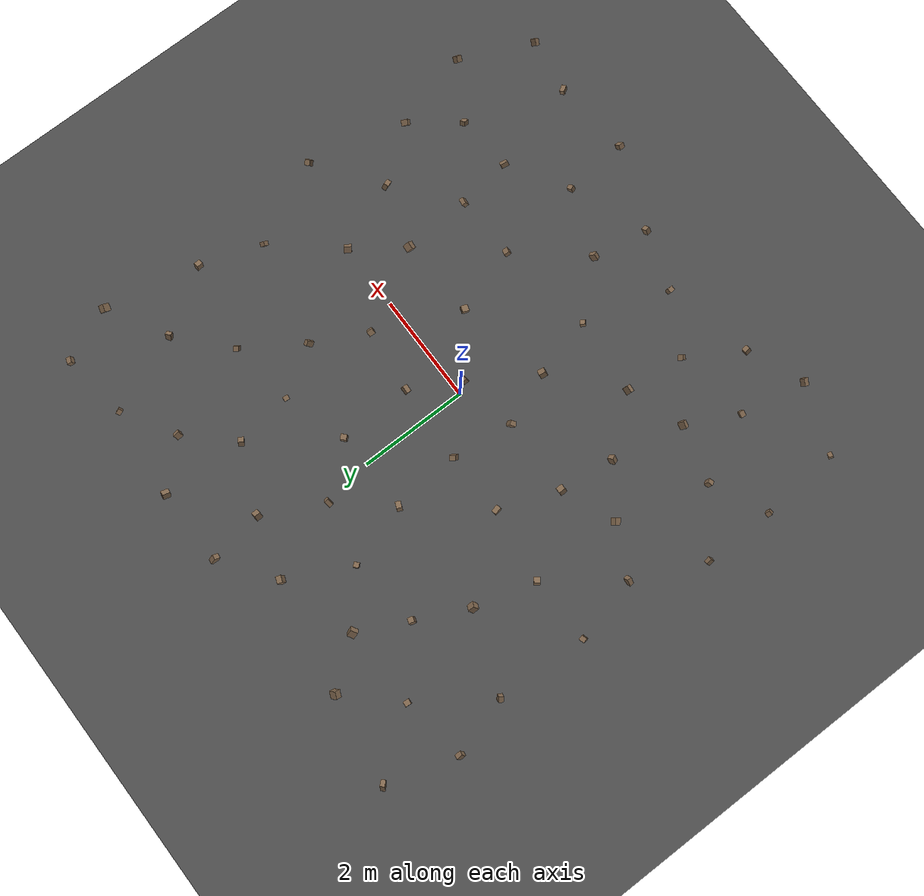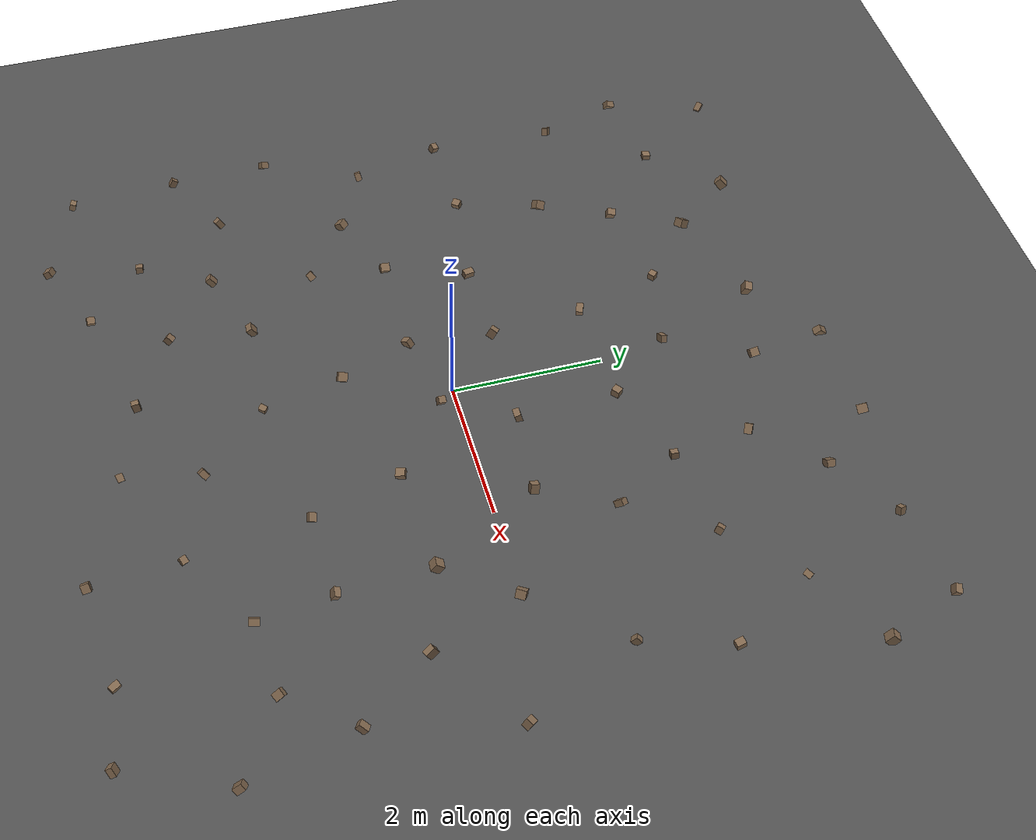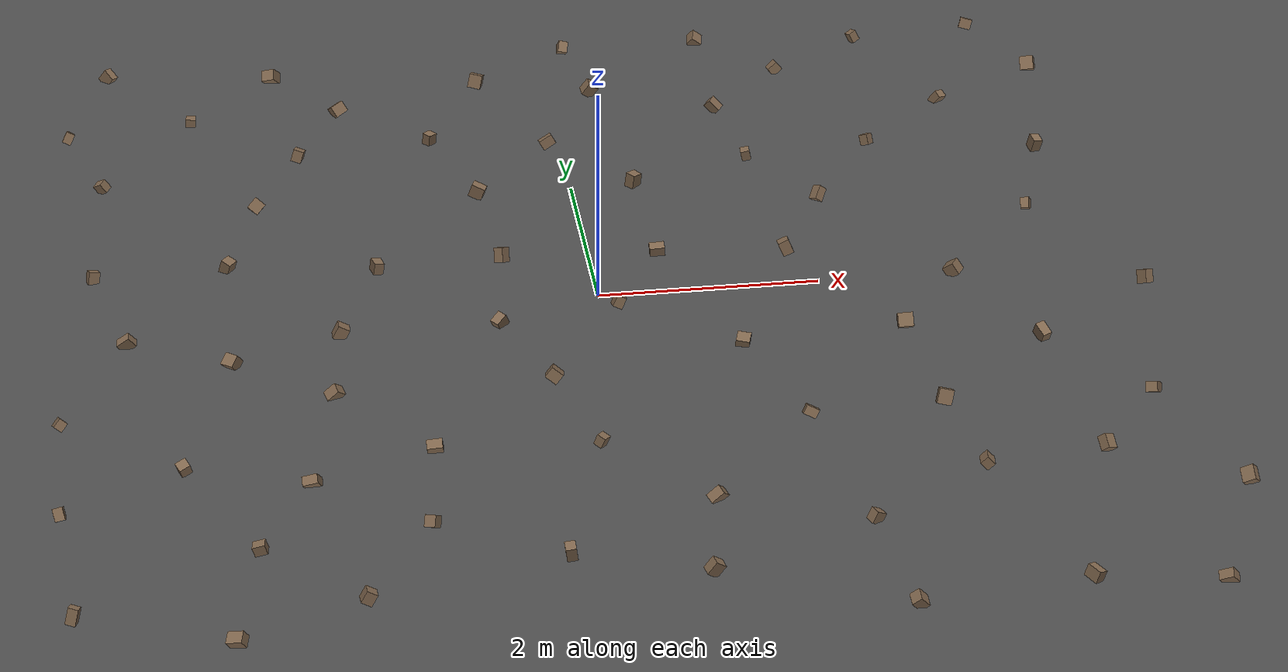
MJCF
<mujoco model="rocky_terrain_scene">
    <compiler angle="radian" inertiafromgeom="true" />
    <option timestep="0.002" gravity="0 0 -9.81" />

    <worldbody>
        <light name="sunlight" pos="5 5 5" dir="-1 -1 -1" diffuse="1 1 1" specular="0.5 0.5 0.5" ambient="0.5 0.5 0.5" />

        <geom name="ground_plane" type="plane" size="50 50 0.1" rgba="0.3 0.3 0.3 1" />

        <body name="rocky_terrain_body">

        <geom name="rock1" type="box" size="0.04775574180794504 0.04015657221901254 0.047092644611906626" pos="-0.2930469673174212 -2.428566678156349 0.052417637780200324" quat="0.5659683844635788 0.06570503498972316 0.09996505787055095 0.268361522676147" rgba="0.5 0.4 0.3 1" friction="0.8457856232382938 0.8948008086875964 0.8172240310866717" /><geom name="rock2" type="box" size="0.06534509023551412 0.059301933481830466 0.057551842438353734" pos="3.243876716720461 -0.0004371800641500556 0.03219657004858152" quat="0.1673346443860843 0.47890702229991405 0.2629057825581981 0.09085255075580363" rgba="0.5 0.4 0.3 1" friction="0.7551214780513752 0.9637959606268572 0.9448879398736101" /><geom name="rock3" type="box" size="0.04181686382163226 0.06998647503593464 0.040399424229857636" pos="-4.627506173423544 -4.332966662146269 0.05805617912228392" quat="0.020059595282871545 0.1188947959183534 0.48364873030394023 0.37739687849483483" rgba="0.5 0.4 0.3 1" friction="0.897326725676747 0.9573219632471748 0.839814851501694" /><geom name="rock4" type="box" size="0.05674370522982118 0.06638238403274262 0.0663383880381467" pos="-2.101480916129772 3.8538171695476695 0.04686006896170025" quat="0.026167602640762885 0.3012677158464365 0.18303883375500632 0.4895258477577943" rgba="0.5 0.4 0.3 1" friction="0.7958982295468022 0.8585444489461216 0.9249401438571795" /><geom name="rock5" type="box" size="0.04506180365713168 0.05762716610907684 0.04980761899961108" pos="-4.496038383373736 0.8801138306238485 0.027765694968674447" quat="0.2220948515764141 0.21148276588738335 0.3395071913659299 0.22691519117027265" rgba="0.5 0.4 0.3 1" friction="0.8087512243989486 0.9977047769633491 0.9337227831981516" /><geom name="rock6" type="box" size="0.058741297507451454 0.0645536153248677 0.056298829861278044" pos="0.4241047461686245 3.9725141359573364 0.05332265857057132" quat="0.14443339199812402 0.33153662471791967 0.3329528723657455 0.1910771109182109" rgba="0.5 0.4 0.3 1" friction="0.8065073493216992 0.891234441856664 0.8475043088747353" /><geom name="rock7" type="box" size="0.057772456878237025 0.04863290424403187 0.056687560426250325" pos="2.354986106396976 4.247129518006595 0.02006967838356359" quat="0.3422070883591358 0.12074881500243778 0.19828430528898972 0.3387597913494366" rgba="0.5 0.4 0.3 1" friction="0.8316987279672532 0.9496867314164049 0.9456961275755478" /><geom name="rock8" type="box" size="0.0437654796415769 0.060980527624881896 0.04865037345415289" pos="-3.745499936099602 -2.401614931572845 0.05938703165467854" quat="0.17041218508494657 0.22339709628322452 0.20736548267102353 0.39882523596080544" rgba="0.5 0.4 0.3 1" friction="0.7738870079240033 0.9546405065506033 0.8741457423750615" /><geom name="rock9" type="box" size="0.055405237064109436 0.04661262742310616 0.05717237225816832" pos="1.8453806165541593 -4.956073358934452 0.030287845065134752" quat="0.09302572053037118 0.38037015654649076 0.3495640351508879 0.1770400877722502" rgba="0.5 0.4 0.3 1" friction="0.8154413935353676 0.9259175353182213 0.9170743821186845" /><geom name="rock10" type="box" size="0.054421592570820895 0.04032849404231402 0.04727383977799451" pos="-3.551910770339619 3.8144248562933623 0.03552698448081079" quat="0.25721294770535835 0.2611830996972175 0.257392015514018 0.2242119370834062" rgba="0.5 0.4 0.3 1" friction="0.8482316362408522 0.9541100189177655 0.8264196540503476" /><geom name="rock11" type="box" size="0.06311316655761015 0.05993250823174425 0.05294088865899024" pos="-0.5592191785935308 -1.3368097280433675 0.041780246169681165" quat="0.4202190582403568 0.08787542472208998 0.16774717784124454 0.32415833919630865" rgba="0.5 0.4 0.3 1" friction="0.7731419812425688 0.9615717174800165 0.8565893015765224" /><geom name="rock12" type="box" size="0.05658450717121025 0.0546390203675339 0.06382782582097608" pos="-3.3015290810212514 -0.7526490299529431 0.030544929020587586" quat="0.2931532402026524 0.3888610202711616 0.035302355088053496 0.2826833844381325" rgba="0.5 0.4 0.3 1" friction="0.7741174631591738 0.9661570885365284 0.9040537680706618" /><geom name="rock13" type="box" size="0.059261589017744865 0.06982188600969934 0.06745617565116503" pos="4.931614072591726 3.9809965554940003 0.025007892391207168" quat="0.4117268081324663 0.1850106147770534 0.28647159133770506 0.1167909857527752" rgba="0.5 0.4 0.3 1" friction="0.8176315623404002 0.9234832590329323 0.8408589503680846" /><geom name="rock14" type="box" size="0.05097829554016909 0.049303431459164354 0.04008252439349549" pos="4.198163202167963 1.1091221837388465 0.025479697673452848" quat="0.23126731934109873 0.3416534280080065 0.06572814235080546 0.36135111030008926" rgba="0.5 0.4 0.3 1" friction="0.8370789617330502 0.8507834409955876 0.8580758440779575" /><geom name="rock15" type="box" size="0.06571618178648611 0.051932734657238924 0.04211374529654703" pos="3.276732793936258 -4.807406991155496 0.04402494289617967" quat="0.13292218108705195 0.2228587153597667 0.3580609864043672 0.28615811714881423" rgba="0.5 0.4 0.3 1" friction="0.7768934102740136 0.9002767595114906 0.9489384146912418" /><geom name="rock16" type="box" size="0.04291671797378995 0.05087347557539725 0.048489533046447174" pos="2.969554110880205 2.578692120848518 0.029181771362118625" quat="0.19059563872917784 0.07460123130488179 0.4349774075246835 0.299825722441257" rgba="0.5 0.4 0.3 1" friction="0.8286050652537629 0.8641001547516063 0.8743189602777444" /><geom name="rock17" type="box" size="0.0687619917071585 0.05272535200955553 0.06369085840274176" pos="-0.686016774583126 4.289671000914698 0.054385924173340094" quat="0.13702040368013066 0.47544390351165733 0.0019117920246105099 0.3856239007836015" rgba="0.5 0.4 0.3 1" friction="0.7882120328390355 0.8764109014520975 0.9039786770195739" /><geom name="rock18" type="box" size="0.06420687630629798 0.05082044285678494 0.043573417373748785" pos="-0.7451845307941793 -3.9921837722782594 0.05811036267624195" quat="0.49443121587849476 0.03856172608266817 0.4312732500903243 0.03573380794851282" rgba="0.5 0.4 0.3 1" friction="0.8102081538680189 0.9352541352302117 0.8909026313481826" /><geom name="rock19" type="box" size="0.04451636622503647 0.04933286075809455 0.05256182388324045" pos="1.7497944063996753 -3.782820457337326 0.024231253686489252" quat="0.31203759672487796 0.08740456941146729 0.12038400127495223 0.48017383258870244" rgba="0.5 0.4 0.3 1" friction="0.843112363840925 0.8592092704177253 0.9120833834935528" /><geom name="rock20" type="box" size="0.046582009613088865 0.04406358533839172 0.053010702488223524" pos="-3.17053954970521 -3.601096623896484 0.04308097743435961" quat="0.30248572111116595 0.23038943566295358 0.19625136630479606 0.2708734769210844" rgba="0.5 0.4 0.3 1" friction="0.8621442031520099 0.9435641151691401 0.8771806369746296" /><geom name="rock21" type="box" size="0.06558913856052039 0.062163230842180124 0.06786071501758953" pos="2.613322219808886 -0.8728786828693398 0.052110124536524" quat="0.3575371187226237 0.1716680652911224 0.31531039150261064 0.15548442448364322" rgba="0.5 0.4 0.3 1" friction="0.8668526932111587 0.8886930082043384 0.8361664645886931" /><geom name="rock22" type="box" size="0.0532903436587133 0.0541262943885385 0.047748128709485034" pos="-2.367658818411474 -4.369803486639475 0.05074044451244336" quat="0.19474834656053946 0.2987656387036438 0.3375269790981461 0.16895903563767062" rgba="0.5 0.4 0.3 1" friction="0.754266120017912 0.8826202297264568 0.906634953258437" /><geom name="rock23" type="box" size="0.06857844205385571 0.04199017733959208 0.04560029546237063" pos="2.8185907786158815 -3.121160607463133 0.03160737718947682" quat="0.1810649725610035 0.37403035854256045 0.3300353573112914 0.11486931158514462" rgba="0.5 0.4 0.3 1" friction="0.7997752419209414 0.9755439092901174 0.8841126696941685" /><geom name="rock24" type="box" size="0.055628131119459565 0.06875449340127712 0.05048681170905948" pos="0.5981046344936614 2.0314832630917117 0.045664935338180584" quat="0.36057329883790384 0.37179668595960025 0.1571359829802232 0.11049403222227279" rgba="0.5 0.4 0.3 1" friction="0.8956329917792994 0.9962822925630206 0.879384024119413" /><geom name="rock25" type="box" size="0.04533741514877437 0.06823281906327025 0.05527462597570554" pos="-0.7959927609252571 0.7553828354695984 0.05262904496613986" quat="0.16223644848072297 0.09906362209010727 0.45597450638606146 0.28272542304310816" rgba="0.5 0.4 0.3 1" friction="0.7582498584448705 0.8748113937148773 0.8342277148083984" /><geom name="rock26" type="box" size="0.06688623776719718 0.04993091562346835 0.04223043269583704" pos="2.2891265100691625 1.5348662228766239 0.04181933348837355" quat="0.03675153004564696 0.508307813769032 0.1956573397751186 0.2592833164102024" rgba="0.5 0.4 0.3 1" friction="0.831432943673006 0.9831228648800017 0.86216509850803" /><geom name="rock27" type="box" size="0.053180096675688925 0.04316456052817291 0.050830968792317494" pos="-4.413781883647704 2.5565115699786913 0.043631621480995336" quat="0.18621106790806016 0.1948684643340944 0.5832378804162789 0.035682587341566575" rgba="0.5 0.4 0.3 1" friction="0.7590244531592626 0.9602373986922133 0.8663720828945171" /><geom name="rock28" type="box" size="0.05124017373319664 0.06128067183813903 0.05160328850814488" pos="4.925757813523843 -0.3907392173979227 0.04622868646552125" quat="0.21804874235366936 0.11971855161443445 0.4165260857179455 0.24570662031395063" rgba="0.5 0.4 0.3 1" friction="0.8245351124060117 0.884397209493313 0.9350314330920492" /><geom name="rock29" type="box" size="0.05187173487144095 0.041302060007412135 0.058282299173554264" pos="1.5211426649138922 -2.1714572338876637 0.020445190212123213" quat="0.2619804077822543 0.28077349515451977 0.3380173312017356 0.11922876586149031" rgba="0.5 0.4 0.3 1" friction="0.8500999144499426 0.8960754587074896 0.8476631534479746" /><geom name="rock30" type="box" size="0.04952707321720987 0.05361453470015647 0.04516537652600309" pos="0.15364697799659588 -0.19299048948961506 0.047026897646008835" quat="0.2133396132056245 0.2790009508011053 0.3431967436128655 0.1644626923804046" rgba="0.5 0.4 0.3 1" friction="0.8744166170954341 0.9628356603288543 0.9429936810159636" /><geom name="rock31" type="box" size="0.06268032413365283 0.06988093565717099 0.04176410643406179" pos="-4.3585919138302485 4.910509739205608 0.021617063986735657" quat="0.013479863577711275 0.2675598865412217 0.33596099394246753 0.3829992559385994" rgba="0.5 0.4 0.3 1" friction="0.849434385597032 0.9689646534476674 0.9416711728845497" /><geom name="rock32" type="box" size="0.04417802033668332 0.06359614794638478 0.06901678221988039" pos="0.6301743996884435 0.6943394801147473 0.026615156307405047" quat="0.23113643870240608 0.2752520046221971 0.20394365504424675 0.28966790163115" rgba="0.5 0.4 0.3 1" friction="0.8151697953954519 0.8862506314527071 0.9166233299244124" /><geom name="rock33" type="box" size="0.06950272867454364 0.054565458200701855 0.04540525237152796" pos="-1.939146287016639 0.7226578090342741 0.036632372003755485" quat="0.21013384390067183 0.2392844073583789 0.30330431850356504 0.24727743023738422" rgba="0.5 0.4 0.3 1" friction="0.8025456758589983 0.9521663639577559 0.8621275160509907" /><geom name="rock34" type="box" size="0.04894374844198412 0.06451859169362481 0.05517644817937388" pos="-3.283653097451651 0.9118660461539232 0.03378184576268764" quat="0.06541716279778435 0.18802021011665235 0.3525571045167042 0.3940055225688591" rgba="0.5 0.4 0.3 1" friction="0.7873952073490463 0.899038510760959 0.9060579897046133" /><geom name="rock35" type="box" size="0.053924934288794184 0.0583445368635553 0.05001737691329133" pos="-2.5395020759690325 2.9551979763555405 0.042130065138947695" quat="0.27265510726276515 0.29825692789496505 0.2803503571818951 0.14873760766037475" rgba="0.5 0.4 0.3 1" friction="0.7607307404291469 0.9239970433048622 0.8834566260130774" /><geom name="rock36" type="box" size="0.04108954655316949 0.05683021045225653 0.06742214122817705" pos="-4.2021620822827055 -0.309279380823714 0.026939832021746116" quat="0.3154061083445748 0.20226258674239386 0.13101667691210328 0.35131462800092805" rgba="0.5 0.4 0.3 1" friction="0.7971662608489616 0.9620905444745347 0.8565613730863127" /><geom name="rock37" type="box" size="0.05443326061845992 0.04499109633524493 0.04215896041322514" pos="-4.751086929728791 -2.8932003904465153 0.02530920597063055" quat="0.12576398484197673 0.33780026077027275 0.10913412990887135 0.4273016244788791" rgba="0.5 0.4 0.3 1" friction="0.875949870894322 0.8892077473225548 0.8226346133233843" /><geom name="rock38" type="box" size="0.04621179905821679 0.06769760546058766 0.0585178899520543" pos="4.566717413577555 2.2403763590487857 0.05471260662650637" quat="0.41809150078806634 0.5033042783273334 0.0753420026877543 0.0032622181968459158" rgba="0.5 0.4 0.3 1" friction="0.7657947808436912 0.9563766744638158 0.923967554931228" /><geom name="rock39" type="box" size="0.04879494152617946 0.04131491733691067 0.06816833121062676" pos="-0.12585849960852435 2.891825615474679 0.05618629925835128" quat="0.025596230163575477 0.3323328347833088 0.06779479834033439 0.5742761367127813" rgba="0.5 0.4 0.3 1" friction="0.8343988152379109 0.9366479686928445 0.9170666601751158" /><geom name="rock40" type="box" size="0.04304814791716572 0.06425709232570218 0.06653720036341537" pos="-1.6755441260583304 -2.326133670956261 0.03827278813825117" quat="0.19335495082470863 0.31414862340350763 0.1557542169843386 0.33674220878744515" rgba="0.5 0.4 0.3 1" friction="0.7713676181368506 0.9091565886411351 0.8431841772520949" /><geom name="rock41" type="box" size="0.05376751899060834 0.04740323352494319 0.06472025262094426" pos="-2.4491197750973814 -1.3629712252049444 0.022428387062050442" quat="0.5419193163336665 0.08475442970749474 0.23027676937349484 0.14304948458534383" rgba="0.5 0.4 0.3 1" friction="0.8008393343644806 0.951592088913198 0.8449162950224385" /><geom name="rock42" type="box" size="0.06670282830684032 0.0610679807632879 0.05872380064380429" pos="-2.9799468641629865 2.020692815617018 0.023731813188910447" quat="0.24848073352660785 0.3032740248194172 0.39206108121006117 0.05618416044391381" rgba="0.5 0.4 0.3 1" friction="0.8503757764776522 0.9773701224023015 0.8955048389629973" /><geom name="rock43" type="box" size="0.045552020185936654 0.06182277547983876 0.051524060156553815" pos="0.3444814465968342 -4.346474568658341 0.05316264198739941" quat="0.13343600989378707 0.3074951618820235 0.357548820539646 0.20152000768454345" rgba="0.5 0.4 0.3 1" friction="0.7992462102044922 0.9540283238170273 0.9066959020700007" /><geom name="rock44" type="box" size="0.051238219233632386 0.04396663867707742 0.06679461492389671" pos="4.490638270402078 -2.20085117625467 0.028942322977094724" quat="0.13588943085828264 0.08790416095463886 0.5184239963117544 0.2577824118753241" rgba="0.5 0.4 0.3 1" friction="0.7568321299106643 0.9844764514150087 0.8848485117972186" /><geom name="rock45" type="box" size="0.044189304085825 0.06149332873567183 0.058409650716430034" pos="-0.9300354661771335 -0.3734994311577111 0.02578619706379675" quat="0.17735273136612703 0.13505963826440068 0.2458519493234528 0.4417356810460195" rgba="0.5 0.4 0.3 1" friction="0.8207948690623585 0.9044497370107559 0.9239236813284892" /><geom name="rock46" type="box" size="0.04140463015711469 0.062028558722283314 0.060771346223891326" pos="4.305600778185948 -4.970404300626284 0.028069233095091455" quat="0.02546001347018115 0.4391567079111067 0.3258121694169129 0.20957110920179933" rgba="0.5 0.4 0.3 1" friction="0.7963829083389993 0.9762082981231007 0.9068256949851026" /><geom name="rock47" type="box" size="0.04120594510236443 0.0674783450173581 0.052387328035258904" pos="3.8547036285750576 3.3724503387558418 0.022240619589607186" quat="0.06629505275911265 0.2848865828360333 0.30986881250734183 0.33894955189751225" rgba="0.5 0.4 0.3 1" friction="0.840642198516769 0.8798128051921086 0.8294875038830198" /><geom name="rock48" type="box" size="0.057459953524926055 0.06547792500809682 0.04751724601842026" pos="4.880954381514792 -3.6554618203956757 0.05800655377298669" quat="0.19188314006659435 0.05438820441621513 0.5701956113281155 0.18353304418907496" rgba="0.5 0.4 0.3 1" friction="0.7986997172250249 0.9209953858391625 0.8365653804410221" /><geom name="rock49" type="box" size="0.06717296572524156 0.0677107449115596 0.04290255560243984" pos="3.7603214448906837 -1.231315324090092 0.05449186963921393" quat="0.14665262447982913 0.2583511673522655 0.22582739338340171 0.3691688147845037" rgba="0.5 0.4 0.3 1" friction="0.7950511212475074 0.9928287271099194 0.9246519855313188" /><geom name="rock50" type="box" size="0.05102588953542085 0.04751226421391333 0.06753735989747167" pos="1.6039363296332931 3.4610241011043215 0.040763522705978265" quat="0.18326369749818663 0.4437759601407526 0.24250914759680303 0.13045119476425773" rgba="0.5 0.4 0.3 1" friction="0.8378770960362265 0.8836333995928479 0.8630619724319752" /><geom name="rock51" type="box" size="0.05593763400581022 0.0680004635405192 0.06805930302816274" pos="-2.728153892899401 4.669633208433725 0.04268722884847535" quat="0.25135936124511243 0.32489477689387924 0.05390799726207739 0.3698378645989309" rgba="0.5 0.4 0.3 1" friction="0.8188243750311537 0.9684601646846742 0.8168275012529653" /><geom name="rock52" type="box" size="0.06254208390704846 0.04099285655025049 0.06026656836043054" pos="1.1496758708491974 -0.9643492883340254 0.02279267616863485" quat="0.25580109108382826 0.32329422643014477 0.1891035669055074 0.23180111558051955" rgba="0.5 0.4 0.3 1" friction="0.8633060613761864 0.8952277562390945 0.8572569938414745" /><geom name="rock53" type="box" size="0.055907693868085674 0.06747384320411925 0.05157346232988272" pos="1.8019126936047307 0.5703490887036997 0.04955504839705996" quat="0.32552720539814184 0.17629251762003456 0.22036879682844016 0.27781148015338347" rgba="0.5 0.4 0.3 1" friction="0.7624292706876606 0.9226821621206055 0.9146789868643723" /><geom name="rock54" type="box" size="0.05537687621632388 0.060073994109476406 0.04199246552514249" pos="-4.741659514226203 3.6304058995805093 0.02999682128340049" quat="0.09921939397526557 0.5198807801289349 0.07349838955023441 0.3074014363455651" rgba="0.5 0.4 0.3 1" friction="0.8439928718072987 0.9063429841292061 0.8806798086689088" /><geom name="rock55" type="box" size="0.06240060253116012 0.05592770107058409 0.06225390393599325" pos="-2.333700838184739 -0.35704850609641436 0.022965946466739696" quat="0.4012274092285118 0.08102605993439463 0.11974238596440549 0.398004144872688" rgba="0.5 0.4 0.3 1" friction="0.8346386960984622 0.8857597065399985 0.8184890790982121" /><geom name="rock56" type="box" size="0.043242977884371744 0.06629653682017941 0.059724279587994464" pos="0.5333651851332224 -3.3324608643554035 0.032428307774586364" quat="0.009744246590809278 0.31253117104360295 0.4276268037123845 0.2500977786532032" rgba="0.5 0.4 0.3 1" friction="0.757094231031002 0.9944930919678047 0.8304580022079502" /><geom name="rock57" type="box" size="0.04703311774603358 0.06386321993313519 0.06512659699517866" pos="-0.8938231856273156 1.9911860614660783 0.05567087839680945" quat="0.2479679623698037 0.35037782656821215 0.23734977198031815 0.16430443908166603" rgba="0.5 0.4 0.3 1" friction="0.8001667899209496 0.9594909859325258 0.9068062927286794" /><geom name="rock58" type="box" size="0.05511302338756817 0.04025107580686712 0.04439856301536653" pos="-4.7630495951757945 -1.5821957250599574 0.04319440975952042" quat="0.3528692384500488 0.046337245394931836 0.23045757238936854 0.37033594376565077" rgba="0.5 0.4 0.3 1" friction="0.8813955789578528 0.9092976518384563 0.9275245310102279" /><geom name="rock59" type="box" size="0.06365576063477339 0.043348554344305984 0.0533889284107668" pos="3.8575221190336624 -3.0257302852931236 0.05417156210604798" quat="0.0552408324568654 0.3597673139985688 0.2885362613593044 0.2964555921852614" rgba="0.5 0.4 0.3 1" friction="0.7857266448232719 0.9678141833273709 0.9315745997928009" /><geom name="rock60" type="box" size="0.04660177304362266 0.04176954454816781 0.052853331007873566" pos="3.280103356420227 4.805946277428424 0.048250815649468703" quat="0.13805747402302246 0.327893339950926 0.4893661854792981 0.044683000546753456" rgba="0.5 0.4 0.3 1" friction="0.7997068695525783 0.9400823287246283 0.922199346303568" /><geom name="rock61" type="box" size="0.05211973205570346 0.046271197700217544 0.060625375097896665" pos="4.517854095243148 4.977501090826044 0.03329600434282552" quat="0.1347493060579255 0.4785289368637441 0.019511249555600022 0.3672105075227304" rgba="0.5 0.4 0.3 1" friction="0.8473130616623898 0.8933325960804634 0.9111268317398417" /><geom name="rock62" type="box" size="0.04965815971608836 0.047461912855913876 0.06915613740169718" pos="-3.392997685309446 -4.802771700592018 0.05501398095195113" quat="0.28403617728135655 0.3067698928664439 0.09283038980692325 0.31636354004527634" rgba="0.5 0.4 0.3 1" friction="0.8571982742047062 0.9750756030109343 0.9084857166526804" /><geom name="rock63" type="box" size="0.049294718555821564 0.06871957397918568 0.059034776967737033" pos="1.6531423534458343 4.994341764283739 0.02187354033218308" quat="0.27941841348314966 0.09864854047359152 0.563847603727187 0.0580854423160718" rgba="0.5 0.4 0.3 1" friction="0.8347748679444523 0.9809937928093841 0.8154016081242981" /><geom name="rock64" type="box" size="0.06986713283877118 0.05917834649965348 0.0465526272388204" pos="0.26932952180341196 4.9669013603832255 0.021684263991719348" quat="0.31652445804209445 0.17393039546662548 0.3917818706653764 0.11776327582590373" rgba="0.5 0.4 0.3 1" friction="0.7734599043033239 0.8543215697195412 0.8656303498854656" /><geom name="rock65" type="box" size="0.04616043247721961 0.06492967020453391 0.048149307222090376" pos="-1.2536865779164885 3.1426163894529644 0.029227961639976763" quat="0.1418899635275077 0.17519648249822536 0.34485102061533685 0.3380625333589302" rgba="0.5 0.4 0.3 1" friction="0.8625636013492433 0.9207185302355978 0.8929158421068871" /><geom name="rock66" type="box" size="0.0636627374382186 0.04047407354218399 0.06680098468355332" pos="2.687361047421514 -2.125075307995483 0.04025926059786804" quat="0.04028775499171488 0.08700159339657537 0.14545310458107166 0.727257547030638" rgba="0.5 0.4 0.3 1" friction="0.8911166537447686 0.9767982652609473 0.8299402071490917" /><geom name="rock67" type="box" size="0.049810984251523804 0.049165168252244026 0.043263660837925405" pos="1.7473695853201594 2.4148539169055683 0.04292830828467453" quat="0.2844663959734135 0.2342899356629236 0.21350700068265033 0.2677366676810126" rgba="0.5 0.4 0.3 1" friction="0.8937161297640166 0.9551318682777101 0.9365497083342916" /><geom name="rock68" type="box" size="0.04096474416475067 0.06488108536598233 0.06690528310756794" pos="-2.711631735875871 -2.690083304711506 0.02344471061043321" quat="0.218807296674919 0.3013277513083023 0.10637610812560593 0.3734888438911727" rgba="0.5 0.4 0.3 1" friction="0.759632948194756 0.9878392304745223 0.9425788516955447" /><geom name="rock69" type="box" size="0.049626815626138035 0.05140423795235266 0.049490868587283715" pos="-1.7883073365127156 -3.4059271654567236 0.03794601640840467" quat="0.24118103556031156 0.3707394107850106 0.014634881404101007 0.3734446722505768" rgba="0.5 0.4 0.3 1" friction="0.7996468533334634 0.8730728076482203 0.838001579593047" /></body>
    </worldbody>
</mujoco>
